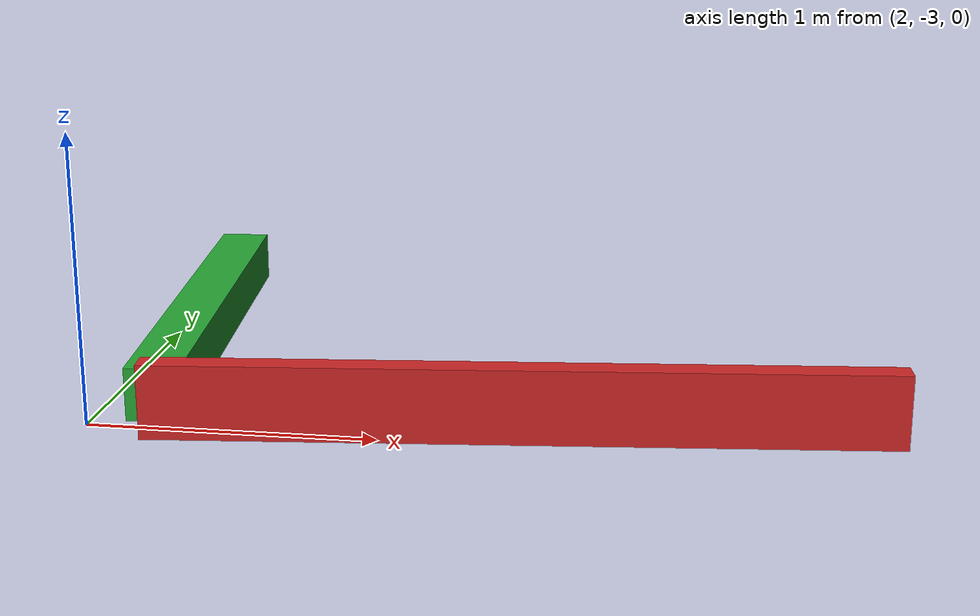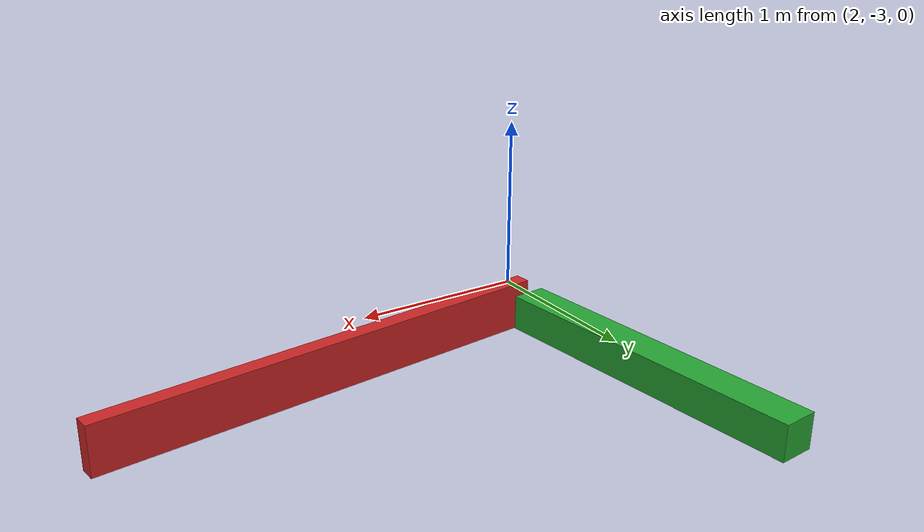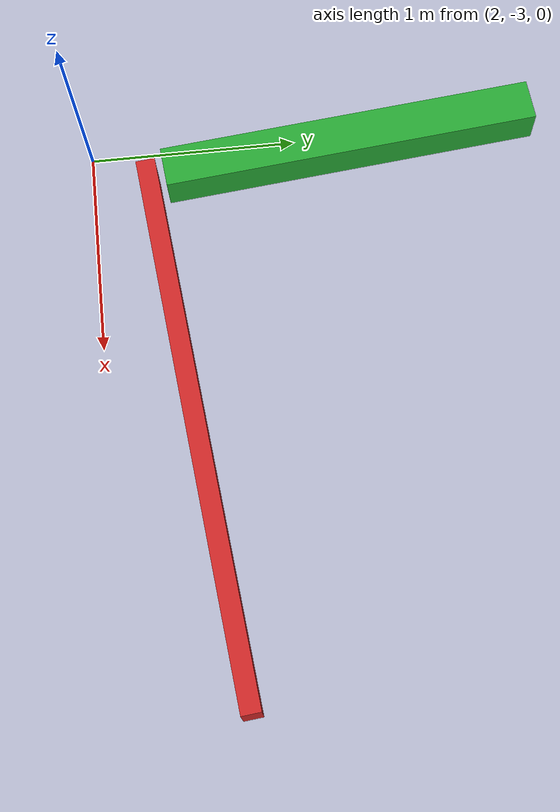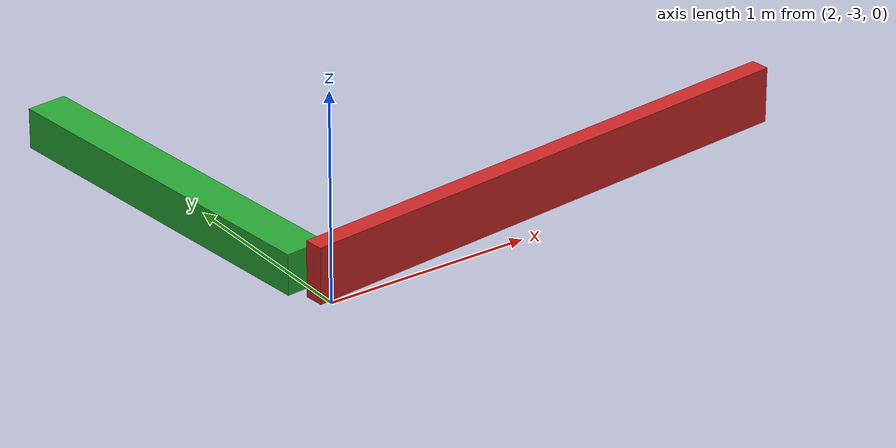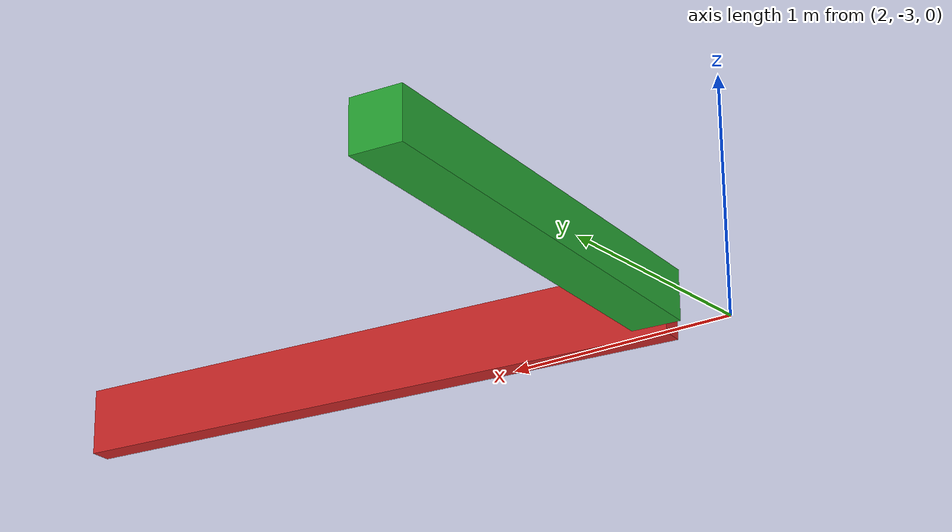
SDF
<?xml version='1.0'?>
<sdf version='1.6'>
  <model name='xymark'>
    <link name='link_0'>
      <pose frame=''>3.42433 -2.59193 -0 0 -0 0.103977</pose>
      <inertial>
        <mass>0.0690348</mass>
        <inertia>
          <ixx>0.000485904</ixx>
          <ixy>0</ixy>
          <ixz>0</ixz>
          <iyy>0.0418338</iyy>
          <iyz>0</iyz>
          <izz>0.0414485</izz>
        </inertia>
        <pose frame=''>0 0 0 0 -0 0</pose>
      </inertial>
      <self_collide>0</self_collide>
      <kinematic>0</kinematic>
      <visual name='visual'>
        <pose frame=''>0 0 0 0 -0 0</pose>
        <geometry>
          <box>
            <size>2.68255 0.093527 0.275173</size>
          </box>
        </geometry>
        <material>
          <lighting>1</lighting>
          <script>
            <uri>file://media/materials/scripts/gazebo.material</uri>
            <name>Gazebo/Red</name>
          </script>
          <ambient>1 0 0 1</ambient>
          <diffuse>1 0 0 1</diffuse>
          <specular>0.1 0.1 0.1 1</specular>
          <emissive>0 0 0 1</emissive>
        </material>
        <transparency>0</transparency>
        <cast_shadows>1</cast_shadows>
      </visual>
      <collision name='collision'>
        <laser_retro>0</laser_retro>
        <max_contacts>10</max_contacts>
        <pose frame=''>0 0 0 0 -0 0</pose>
        <geometry>
          <box>
            <size>2.68255 0.093527 0.275173</size>
          </box>
        </geometry>
        <surface>
          <friction>
            <ode>
              <mu>1</mu>
              <mu2>1</mu2>
              <fdir1>0 0 0</fdir1>
              <slip1>0</slip1>
              <slip2>0</slip2>
            </ode>
            <torsional>
              <coefficient>1</coefficient>
              <patch_radius>0</patch_radius>
              <surface_radius>0</surface_radius>
              <use_patch_radius>1</use_patch_radius>
              <ode>
                <slip>0</slip>
              </ode>
            </torsional>
          </friction>
          <bounce>
            <restitution_coefficient>0</restitution_coefficient>
            <threshold>1e+06</threshold>
          </bounce>
          <contact>
            <collide_without_contact>0</collide_without_contact>
            <collide_without_contact_bitmask>1</collide_without_contact_bitmask>
            <collide_bitmask>1</collide_bitmask>
            <ode>
              <soft_cfm>0</soft_cfm>
              <soft_erp>0.2</soft_erp>
              <kp>1e+13</kp>
              <kd>1</kd>
              <max_vel>0.01</max_vel>
              <min_depth>0</min_depth>
            </ode>
            <bullet>
              <split_impulse>1</split_impulse>
              <split_impulse_penetration_threshold>-0.01</split_impulse_penetration_threshold>
              <soft_cfm>0</soft_cfm>
              <soft_erp>0.2</soft_erp>
              <kp>1e+13</kp>
              <kd>1</kd>
            </bullet>
          </contact>
        </surface>
      </collision>
    </link>
    <link name='link_1'>
      <pose frame=''>2.01435 -1.72524 -0.018907 0 -0 0.0999</pose>
      <inertial>
        <mass>0.0741318</mass>
        <inertia>
          <ixx>0.0215417</ixx>
          <ixy>0</ixy>
          <ixz>0</ixz>
          <iyy>0.00049332</iyy>
          <iyz>0</iyz>
          <izz>0.0215434</izz>
        </inertia>
        <pose frame=''>0 0 0 0 -0 0</pose>
      </inertial>
      <self_collide>0</self_collide>
      <kinematic>0</kinematic>
      <visual name='visual'>
        <pose frame=''>0 0 0 0 -0 0</pose>
        <geometry>
          <box>
            <size>0.200159 1.85667 0.199473</size>
          </box>
        </geometry>
        <material>
          <lighting>1</lighting>
          <script>
            <uri>file://media/materials/scripts/gazebo.material</uri>
            <name>Gazebo/Green</name>
          </script>
          <ambient>0 1 0 1</ambient>
          <diffuse>0 1 0 1</diffuse>
          <specular>0.1 0.1 0.1 1</specular>
          <emissive>0 0 0 1</emissive>
        </material>
        <transparency>0</transparency>
        <cast_shadows>1</cast_shadows>
      </visual>
      <collision name='collision'>
        <laser_retro>0</laser_retro>
        <max_contacts>10</max_contacts>
        <pose frame=''>0 0 0 0 -0 0</pose>
        <geometry>
          <box>
            <size>0.200159 1.85667 0.199473</size>
          </box>
        </geometry>
        <surface>
          <friction>
            <ode>
              <mu>1</mu>
              <mu2>1</mu2>
              <fdir1>0 0 0</fdir1>
              <slip1>0</slip1>
              <slip2>0</slip2>
            </ode>
            <torsional>
              <coefficient>1</coefficient>
              <patch_radius>0</patch_radius>
              <surface_radius>0</surface_radius>
              <use_patch_radius>1</use_patch_radius>
              <ode>
                <slip>0</slip>
              </ode>
            </torsional>
          </friction>
          <bounce>
            <restitution_coefficient>0</restitution_coefficient>
            <threshold>1e+06</threshold>
          </bounce>
          <contact>
            <collide_without_contact>0</collide_without_contact>
            <collide_without_contact_bitmask>1</collide_without_contact_bitmask>
            <collide_bitmask>1</collide_bitmask>
            <ode>
              <soft_cfm>0</soft_cfm>
              <soft_erp>0.2</soft_erp>
              <kp>1e+13</kp>
              <kd>1</kd>
              <max_vel>0.01</max_vel>
              <min_depth>0</min_depth>
            </ode>
            <bullet>
              <split_impulse>1</split_impulse>
              <split_impulse_penetration_threshold>-0.01</split_impulse_penetration_threshold>
              <soft_cfm>0</soft_cfm>
              <soft_erp>0.2</soft_erp>
              <kp>1e+13</kp>
              <kd>1</kd>
            </bullet>
          </contact>
        </surface>
      </collision>
    </link>
    <joint name='link_0_JOINT_0' type='fixed'>
      <parent>link_0</parent>
      <child>link_1</child>
      <pose frame=''>0 0 0 0 -0 0</pose>
      <physics>
        <ode>
          <limit>
            <cfm>0</cfm>
            <erp>0.2</erp>
          </limit>
          <suspension>
            <cfm>0</cfm>
            <erp>0.2</erp>
          </suspension>
        </ode>
      </physics>
    </joint>
    <static>0</static>
    <allow_auto_disable>1</allow_auto_disable>
  </model>
</sdf>
